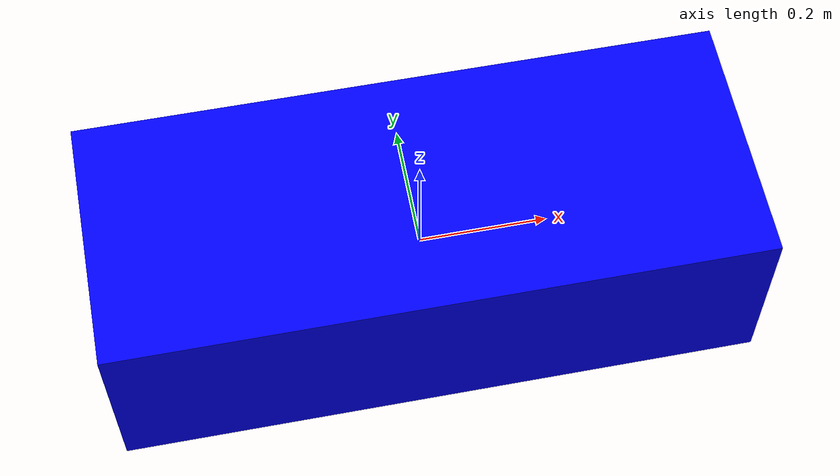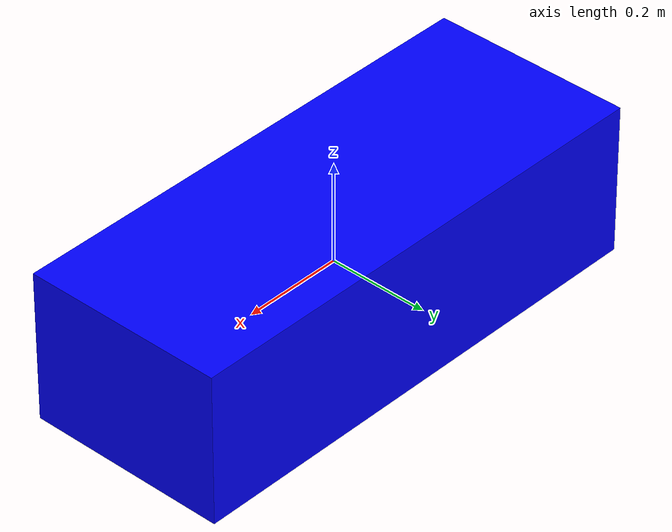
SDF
<?xml version="1.0"?>
<sdf version="1.6">
  <model name="underwater_vehicle">
    <!-- Main body with buoyancy -->
    <link name="base_link">
      <inertial>
        <mass>50.0</mass>
        <inertia>
          <ixx>1.25</ixx>
          <ixy>0.0</ixy>
          <ixz>0.0</ixz>
          <iyy>1.25</iyy>
          <iyz>0.0</iyz>
          <izz>2.5</izz>
        </inertia>
      </inertial>

      <!-- Collision for physics -->
      <collision name="collision">
        <geometry>
          <box>
            <size>1.0 0.4 0.3</size>
          </box>
        </geometry>
      </collision>

      <!-- Visual representation -->
      <visual name="visual">
        <geometry>
          <box>
            <size>1.0 0.4 0.3</size>
          </box>
        </geometry>
        <material>
          <diffuse>0.0 0.0 1.0</diffuse>  <!-- Blue color -->
          <specular>0.1 0.1 0.1</specular>
        </material>
      </visual>
    </link>

    <!-- Front thruster -->
    <link name="front_thruster">
      <inertial>
        <mass>0.1</mass>
        <inertia>
          <ixx>0.0001</ixx>
          <ixy>0.0</ixy>
          <ixz>0.0</ixz>
          <iyy>0.0001</iyy>
          <iyz>0.0</iyz>
          <izz>0.0001</izz>
        </inertia>
      </inertial>

      <collision name="thruster_collision">
        <geometry>
          <cylinder>
            <radius>0.05</radius>
            <length>0.1</length>
          </cylinder>
        </geometry>
      </collision>

      <visual name="thruster_visual">
        <geometry>
          <cylinder>
            <radius>0.05</radius>
            <length>0.1</length>
          </cylinder>
        </geometry>
        <material>
          <diffuse>0.8 0.8 0.8</diffuse>
          <specular>0.5 0.5 0.5</specular>
        </material>
      </visual>
    </link>

    <!-- Rear thruster -->
    <link name="rear_thruster">
      <inertial>
        <mass>0.1</mass>
        <inertia>
          <ixx>0.0001</ixx>
          <ixy>0.0</ixy>
          <ixz>0.0</ixz>
          <iyy>0.0001</iyy>
          <iyz>0.0</iyz>
          <izz>0.0001</izz>
        </inertia>
      </inertial>

      <collision name="rear_thruster_collision">
        <geometry>
          <cylinder>
            <radius>0.05</radius>
            <length>0.1</length>
          </cylinder>
        </geometry>
      </collision>

      <visual name="rear_thruster_visual">
        <geometry>
          <cylinder>
            <radius>0.05</radius>
            <length>0.1</length>
          </cylinder>
        </geometry>
        <material>
          <diffuse>0.8 0.8 0.8</diffuse>
          <specular>0.5 0.5 0.5</specular>
        </material>
      </visual>
    </link>

    <!-- Left fin -->
    <link name="left_fin">
      <inertial>
        <mass>0.2</mass>
        <inertia>
          <ixx>0.001</ixx>
          <ixy>0.0</ixy>
          <ixz>0.0</ixz>
          <iyy>0.001</iyy>
          <iyz>0.0</iyz>
          <izz>0.001</izz>
        </inertia>
      </inertial>

      <collision name="left_fin_collision">
        <geometry>
          <box>
            <size>0.1 0.3 0.05</size>
          </box>
        </geometry>
      </collision>

      <visual name="left_fin_visual">
        <geometry>
          <box>
            <size>0.1 0.3 0.05</size>
          </box>
        </geometry>
        <material>
          <diffuse>1.0 0.0 0.0</diffuse>
          <specular>0.5 0.5 0.5</specular>
        </material>
      </visual>
    </link>

    <!-- Right fin -->
    <link name="right_fin">
      <inertial>
        <mass>0.2</mass>
        <inertia>
          <ixx>0.001</ixx>
          <ixy>0.0</ixy>
          <ixz>0.0</ixz>
          <iyy>0.001</iyy>
          <iyz>0.0</iyz>
          <izz>0.001</izz>
        </inertia>
      </inertial>

      <collision name="right_fin_collision">
        <geometry>
          <box>
            <size>0.1 0.3 0.05</size>
          </box>
        </geometry>
      </collision>

      <visual name="right_fin_visual">
        <geometry>
          <box>
            <size>0.1 0.3 0.05</size>
          </box>
        </geometry>
        <material>
          <diffuse>1.0 0.0 0.0</diffuse>
          <specular>0.5 0.5 0.5</specular>
        </material>
      </visual>
    </link>

    <!-- Joints connecting thrusters and fins -->
    <joint name="front_thruster_joint" type="revolute">
      <parent>base_link</parent>
      <child>front_thruster</child>
      <pose>0.5 0 0 0 0 0</pose>
      <axis>
        <xyz>1 0 0</xyz>
        <limit>
          <lower>-1.57</lower>
          <upper>1.57</upper>
        </limit>
      </axis>
    </joint>

    <joint name="rear_thruster_joint" type="revolute">
      <parent>base_link</parent>
      <child>rear_thruster</child>
      <pose>-0.5 0 0 0 0 0</pose>
      <axis>
        <xyz>1 0 0</xyz>
        <limit>
          <lower>-1.57</lower>
          <upper>1.57</upper>
        </limit>
      </axis>
    </joint>

    <joint name="left_fin_joint" type="revolute">
      <parent>base_link</parent>
      <child>left_fin</child>
      <pose>0 0.2 0 0 0 0</pose>
      <axis>
        <xyz>0 1 0</xyz>
        <limit>
          <lower>-0.5</lower>
          <upper>0.5</upper>
        </limit>
      </axis>
    </joint>

    <joint name="right_fin_joint" type="revolute">
      <parent>base_link</parent>
      <child>right_fin</child>
      <pose>0 -0.2 0 0 0 0</pose>
      <axis>
        <xyz>0 1 0</xyz>
        <limit>
          <lower>-0.5</lower>
          <upper>0.5</upper>
        </limit>
      </axis>
    </joint>

    <!-- Hydrodynamics plugin for underwater behavior -->
    <plugin
      filename="ignition-gazebo-hydrodynamics-system"
      name="ignition::gazebo::systems::Hydrodynamics">
      <link_name>base_link</link_name>
      <xDotU>-5.0</xDotU>
      <yDotV>-100.0</yDotV>
      <zDotW>-100.0</zDotW>
      <kDotP>-0.1</kDotP>
      <mDotQ>-20.0</mDotQ>
      <nDotR>-20.0</nDotR>
      <xUU>-8.0</xUU>
      <xU>0</xU>
      <yVV>-500.0</yVV>
      <yV>0</yV>
      <zWW>-500.0</zWW>
      <zW>0</zW>
      <kPP>-0.1</kPP>
      <kP>0</kP>
      <mQQ>-300.0</mQQ>
      <mQ>0</mQ>
      <nRR>-300.0</nRR>
      <nR>0</nR>
    </plugin>

    <!-- Buoyancy plugin -->
    <plugin
      filename="ignition-gazebo-buoyancy-system"
      name="ignition::gazebo::systems::Buoyancy">
    </plugin>

    <!-- Thruster control plugin -->
    <plugin
      filename="ignition-gazebo-velocity-control-system"
      name="ignition::gazebo::systems::VelocityControl">
      <link_name>base_link</link_name>
    </plugin>
  </model>
</sdf>
